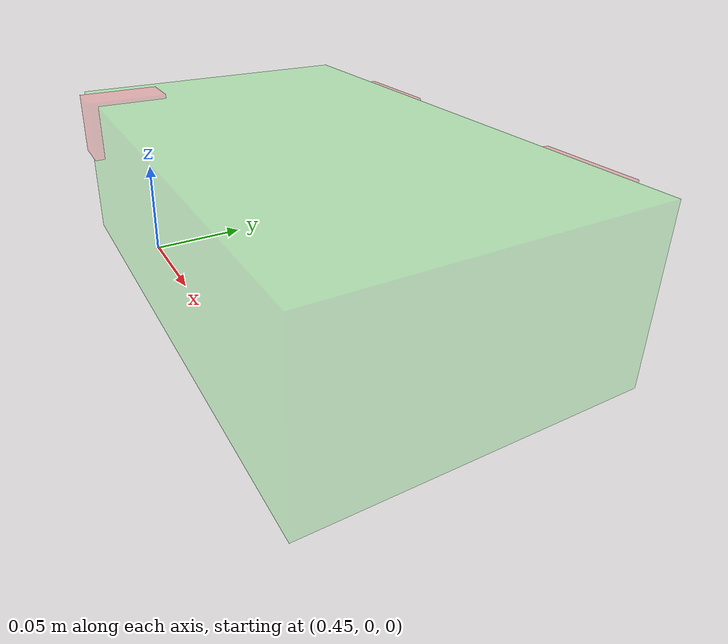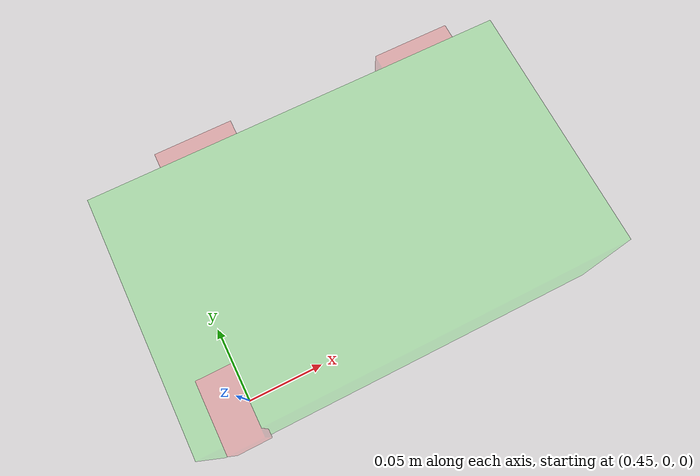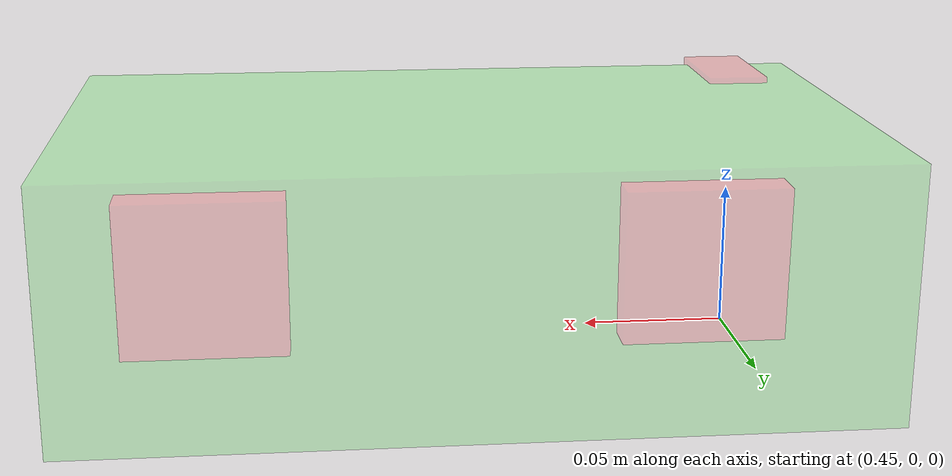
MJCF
<mujoco model="props2">
  <asset>
    <!-- this scene is duplicated across particles and this mesh is too heavy - the diff is 400 particles vs 800 particles -->
  </asset>

  <worldbody>
    <body name="object" pos="0.55 0.05 0.05">
      <freejoint/>

      <geom type="box" size="0.125 0.075 0.04" pos="0 0 0" rgba="0 1 0 0.1" mass="100.0"/>

      <geom type="box" size="0.01 0.02 0.015" pos="-0.10 -0.06 0.027" rgba="1 0 0 0.1" mass="0.1"/>

      <geom type="box"
            size="0.023 0.01 0.022"
            pos="-0.06 0.075 0.015"
            euler="-1.0 0 0"
            rgba="1 0 0 0.1"
            mass="0.1"/>

      <geom type="box"
            size="0.023 0.01 0.022"
            pos="0.078 0.075 0.015"
            euler="-1.0 0 0"
            rgba="1 0 0 0.1"
            mass="0.1"/>
    </body>
  </worldbody>
</mujoco>
